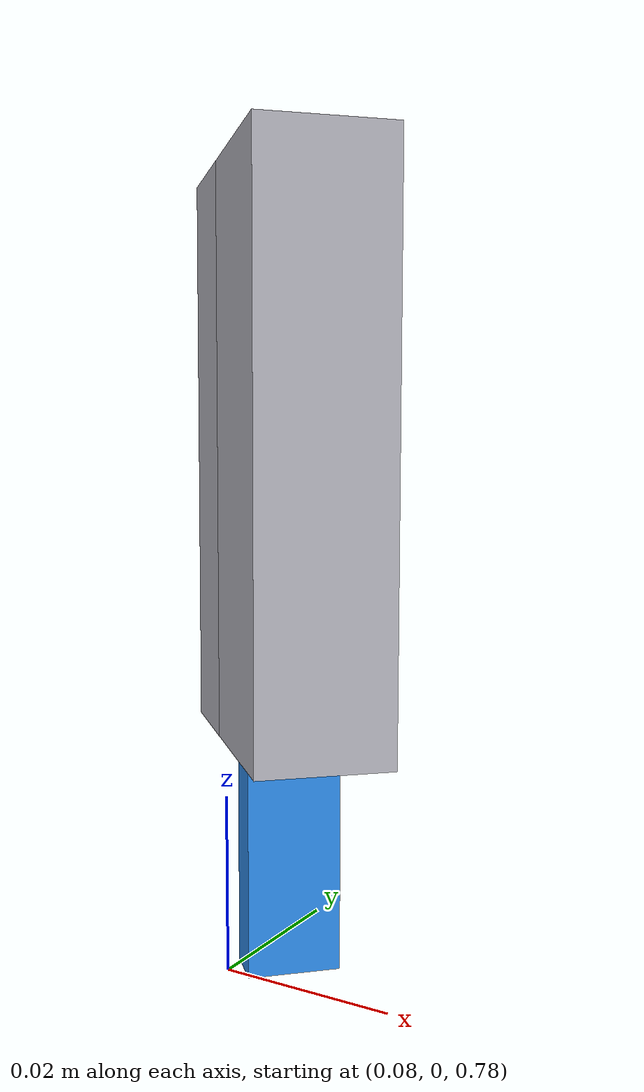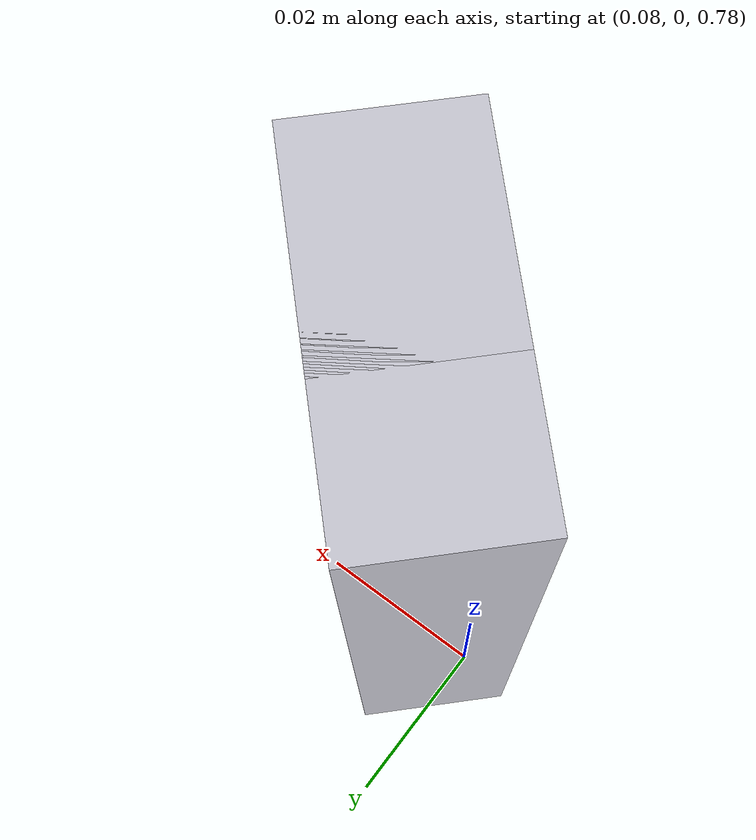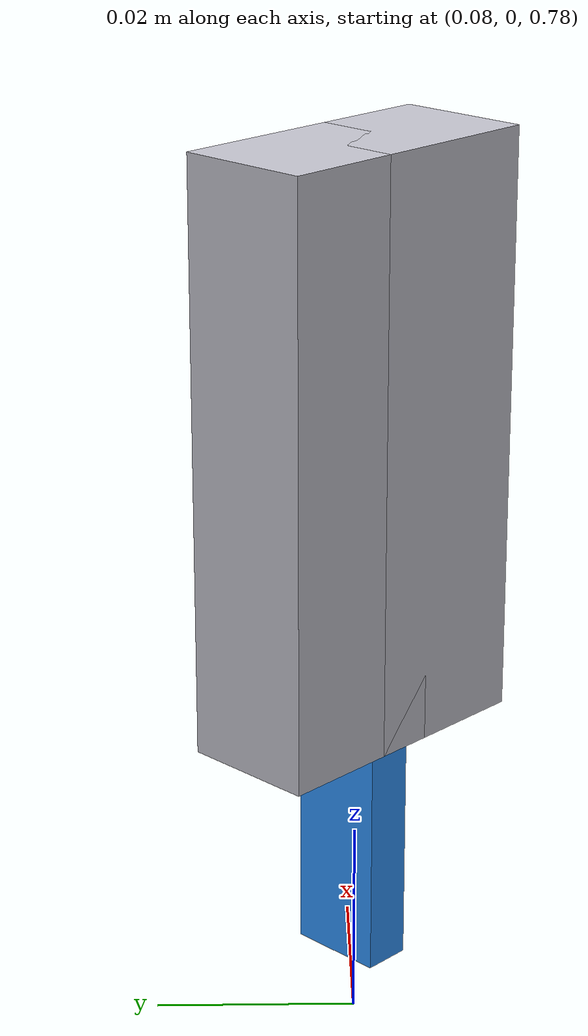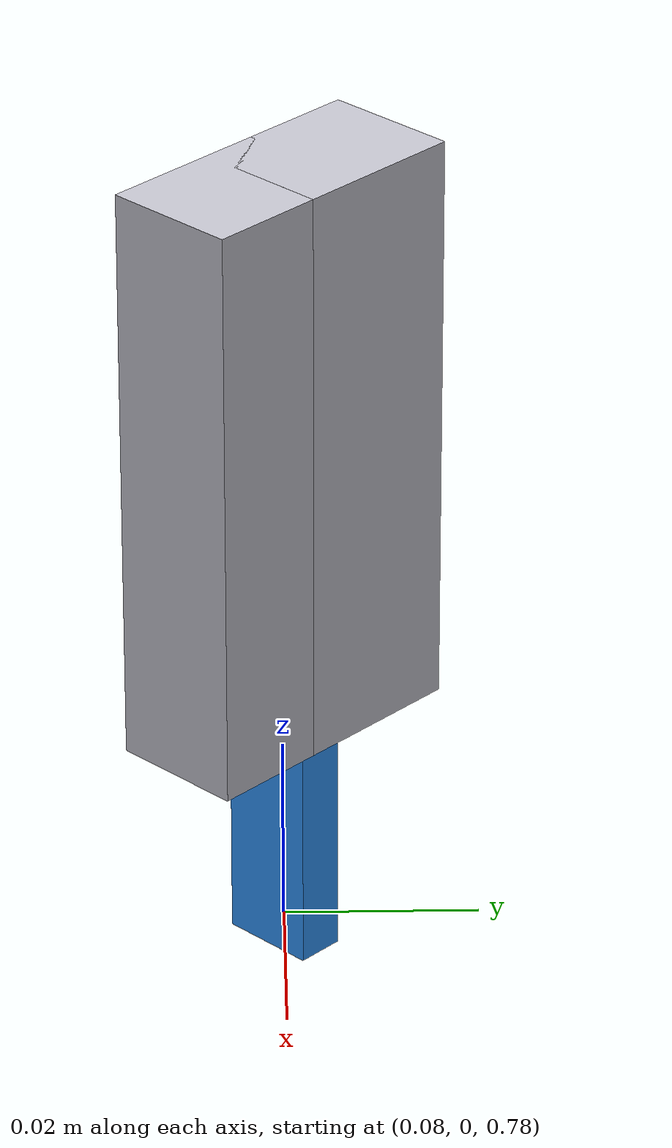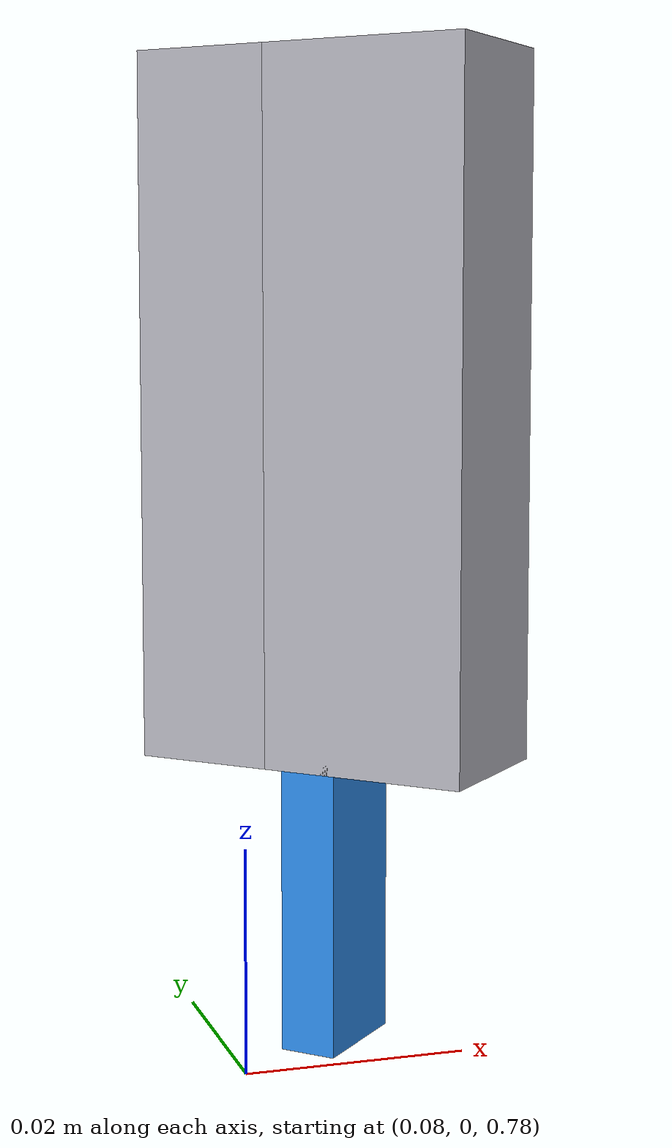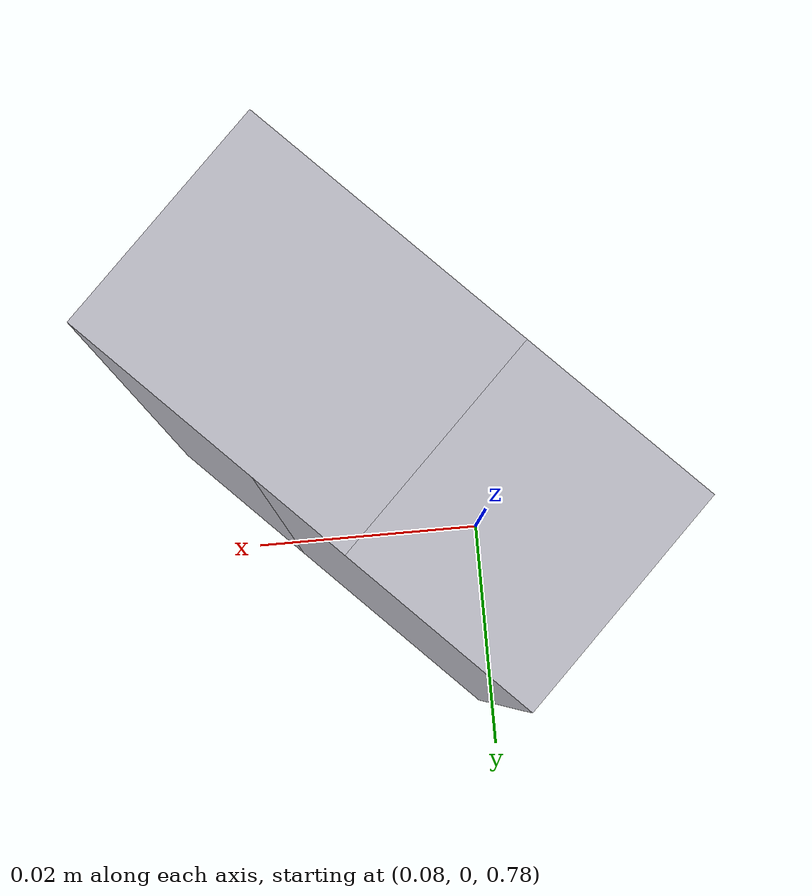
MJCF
<mujoco model="panda_with_plug">
  <compiler angle="radian" meshdir="assets" autolimits="true"/>

  <option integrator="implicitfast"/>

  <default>
    <default class="panda">
      <joint armature="0.1" damping="1" axis="0 0 1" range="-2.8973 2.8973"/>
      <general dyntype="none" biastype="affine" ctrlrange="-2.8973 2.8973" forcerange="-87 87"/>
      <default class="finger">
        <joint axis="0 1 0" type="slide" range="0 0.04"/>
      </default>
      <default class="collision">
        <geom type="mesh" group="3"/>
        <default class="fingertip_pad_collision_1">
          <geom type="box" size="0.0085 0.004 0.0085" pos="0 0.0055 0.0445"/>
        </default>
        <default class="fingertip_pad_collision_2">
          <geom type="box" size="0.003 0.002 0.003" pos="0.0055 0.002 0.05"/>
        </default>
        <default class="fingertip_pad_collision_3">
          <geom type="box" size="0.003 0.002 0.003" pos="-0.0055 0.002 0.05"/>
        </default>
        <default class="fingertip_pad_collision_4">
          <geom type="box" size="0.003 0.002 0.0035" pos="0.0055 0.002 0.0395"/>
        </default>
        <default class="fingertip_pad_collision_5">
          <geom type="box" size="0.003 0.002 0.0035" pos="-0.0055 0.002 0.0395"/>
        </default>
      </default>
    </default>
  </default>

  <asset>
    <mesh name="link0_c" file="link0.stl"/>
    <mesh name="link1_c" file="link1.stl"/>
    <mesh name="link2_c" file="link2.stl"/>
    <mesh name="link3_c" file="link3.stl"/>
    <mesh name="link4_c" file="link4.stl"/>
    <mesh name="link5_c0" file="link5_collision_0.obj"/>
    <mesh name="link5_c1" file="link5_collision_1.obj"/>
    <mesh name="link5_c2" file="link5_collision_2.obj"/>
    <mesh name="link6_c" file="link6.stl"/>
    <mesh name="link7_c" file="link7.stl"/>
    <mesh name="hand_c" file="hand.stl"/>
  </asset>

  <worldbody>
    <body name="link0" childclass="panda">
      <inertial mass="0.629769" pos="-0.041018 -0.00014 0.049974"
        fullinertia="0.00315 0.00388 0.004285 8.2904e-7 0.00015 8.2299e-6"/>
      <geom mesh="link0_c" class="collision"/>
      <body name="link1" pos="0 0 0.333">
        <inertial mass="4.970684" pos="0.003875 0.002081 -0.04762"
          fullinertia="0.70337 0.70661 0.0091170 -0.00013900 0.0067720 0.019169"/>
        <joint name="joint1"/>
        <geom mesh="link1_c" class="collision"/>
        <body name="link2" quat="1 -1 0 0">
          <inertial mass="0.646926" pos="-0.003141 -0.02872 0.003495"
            fullinertia="0.0079620 2.8110e-2 2.5995e-2 -3.925e-3 1.0254e-2 7.04e-4"/>
          <joint name="joint2" range="-1.7628 1.7628"/>
          <geom mesh="link2_c" class="collision"/>
          <body name="link3" pos="0 -0.316 0" quat="1 1 0 0">
            <joint name="joint3"/>
            <inertial mass="3.228604" pos="2.7518e-2 3.9252e-2 -6.6502e-2"
              fullinertia="3.7242e-2 3.6155e-2 1.083e-2 -4.761e-3 -1.1396e-2 -1.2805e-2"/>
            <geom mesh="link3_c" class="collision"/>
            <body name="link4" pos="0.0825 0 0" quat="1 1 0 0">
              <inertial mass="3.587895" pos="-5.317e-2 1.04419e-1 2.7454e-2"
                fullinertia="2.5853e-2 1.9552e-2 2.8323e-2 7.796e-3 -1.332e-3 8.641e-3"/>
              <joint name="joint4" range="-3.0718 -0.0698"/>
              <geom mesh="link4_c" class="collision"/>
              <body name="link5" pos="-0.0825 0.384 0" quat="1 -1 0 0">
                <inertial mass="1.225946" pos="-1.1953e-2 4.1065e-2 -3.8437e-2"
                  fullinertia="3.5549e-2 2.9474e-2 8.627e-3 -2.117e-3 -4.037e-3 2.29e-4"/>
                <joint name="joint5"/>
                <geom mesh="link5_c0" class="collision"/>
                <geom mesh="link5_c1" class="collision"/>
                <geom mesh="link5_c2" class="collision"/>
                <body name="link6" quat="1 1 0 0">
                  <inertial mass="1.666555" pos="6.0149e-2 -1.4117e-2 -1.0517e-2"
                    fullinertia="1.964e-3 4.354e-3 5.433e-3 1.09e-4 -1.158e-3 3.41e-4"/>
                  <joint name="joint6" range="-0.0175 3.7525"/>
                  <geom mesh="link6_c" class="collision"/>
                  <body name="link7" pos="0.088 0 0" quat="1 1 0 0">
                    <inertial mass="7.35522e-01" pos="1.0517e-2 -4.252e-3 6.1597e-2"
                      fullinertia="1.2516e-2 1.0027e-2 4.815e-3 -4.28e-4 -1.196e-3 -7.41e-4"/>
                    <joint name="joint7"/>
                    <geom mesh="link7_c" class="collision"/>
                    <body name="hand" pos="0 0 0.107" quat="0.9238795 0 0 -0.3826834">
                      <inertial mass="0.73" pos="-0.01 0 0.03" diaginertia="0.001 0.0025 0.0017"/>
                      <geom mesh="hand_c" class="collision"/>
                      <body name="left_finger" pos="0 0 0.0584">
                        <inertial mass="0.015" pos="0 0 0" diaginertia="2.375e-6 2.375e-6 7.5e-7"/>
                        <joint name="finger_joint1" class="finger"/>
                        <geom type="box" size="0.007 0.009 0.03" pos="0 0.006 0.03"
                              rgba="0.78 0.78 0.82 1" group="2"
                              contype="0" conaffinity="0"/>
                        <geom class="fingertip_pad_collision_1"/>
                        <geom class="fingertip_pad_collision_2"/>
                        <geom class="fingertip_pad_collision_3"/>
                        <geom class="fingertip_pad_collision_4"/>
                        <geom class="fingertip_pad_collision_5"/>
                      </body>
                      <body name="right_finger" pos="0 0 0.0584" quat="0 0 0 1">
                        <inertial mass="0.015" pos="0 0 0" diaginertia="2.375e-6 2.375e-6 7.5e-7"/>
                        <joint name="finger_joint2" class="finger"/>
                        <geom type="box" size="0.007 0.009 0.03" pos="0 0.006 0.03"
                              rgba="0.78 0.78 0.82 1" group="2"
                              contype="0" conaffinity="0"/>
                        <geom class="fingertip_pad_collision_1"/>
                        <geom class="fingertip_pad_collision_2"/>
                        <geom class="fingertip_pad_collision_3"/>
                        <geom class="fingertip_pad_collision_4"/>
                        <geom class="fingertip_pad_collision_5"/>
                      </body>
                      <body name="plug" pos="0 0 0.1234">
                        <inertial mass="0.05" pos="0 0 0" diaginertia="1e-5 1e-5 1e-5"/>
                        <geom name="plug_geom" type="box"
                              size="0.005 0.0025 0.020"
                              rgba="0.2 0.6 1.0 1"
                              friction="1.0 0.05 0.001"/>
                        <site name="plug_tip" pos="0 0 0.020" size="0.001" rgba="1 0 0 1"/>
                      </body>
                    </body>
                  </body>
                </body>
              </body>
            </body>
          </body>
        </body>
      </body>
    </body>
  </worldbody>

  <equality>
    <joint joint1="finger_joint1" joint2="finger_joint2" solimp="0.95 0.99 0.001" solref="0.005 1"/>
  </equality>

  <actuator>
    <general class="panda" name="actuator1" joint="joint1" gainprm="4500" biasprm="0 -4500 -450"/>
    <general class="panda" name="actuator2" joint="joint2" gainprm="4500" biasprm="0 -4500 -450"
      ctrlrange="-1.7628 1.7628"/>
    <general class="panda" name="actuator3" joint="joint3" gainprm="3500" biasprm="0 -3500 -350"/>
    <general class="panda" name="actuator4" joint="joint4" gainprm="3500" biasprm="0 -3500 -350"
      ctrlrange="-3.0718 -0.0698"/>
    <general class="panda" name="actuator5" joint="joint5" gainprm="2000" biasprm="0 -2000 -200" forcerange="-12 12"/>
    <general class="panda" name="actuator6" joint="joint6" gainprm="2000" biasprm="0 -2000 -200" forcerange="-12 12"
      ctrlrange="-0.0175 3.7525"/>
    <general class="panda" name="actuator7" joint="joint7" gainprm="2000" biasprm="0 -2000 -200" forcerange="-12 12"/>
    <!-- Simple position actuator on finger_joint1; finger_joint2 follows via equality.
         ctrl in [0, 0.04] is the primary finger's qpos = half the physical grip width. -->
    <position name="actuator8" joint="finger_joint1" kp="300" kv="15"
      ctrlrange="0 0.04" forcerange="-100 100"/>
  </actuator>

  <contact>
    <exclude body1="link0" body2="link1"/>
    <!-- Plug is rigidly welded to hand; fingers pass through it visually without
         needing physical contact. Excluding both finger pairs avoids degenerate
         contacts at gripper close. -->
    <exclude body1="plug" body2="left_finger"/>
    <exclude body1="plug" body2="right_finger"/>
    <exclude body1="plug" body2="hand"/>
  </contact>
</mujoco>
